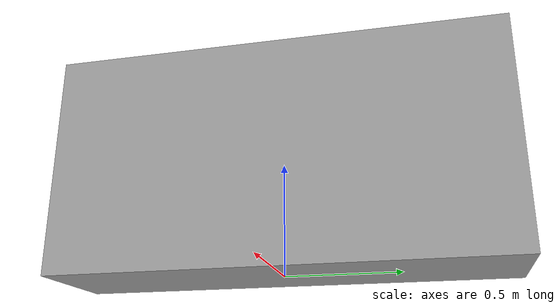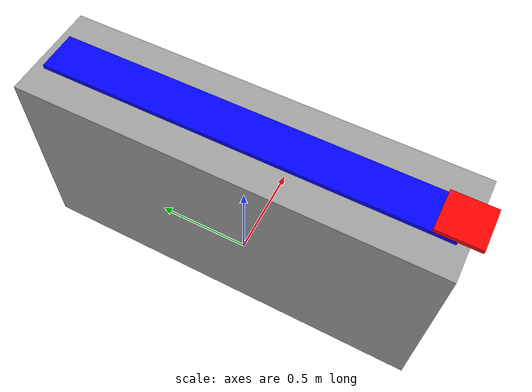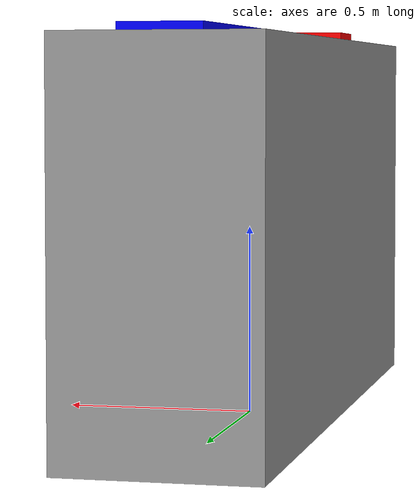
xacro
<?xml version="1.0"?>
<robot xmlns:xacro="http://ros.org/wiki/xacro" name="table_rail_montage">

  <!-- Table -->
  <link name="table">
    <visual>
      <origin xyz="0 0 0.5"/>
      <geometry><box size="0.5 2 1"/></geometry>
      <material name="grey"><color rgba="0.6 0.6 0.6 1.0"/></material>
    </visual>
    <collision>
      <origin xyz="0 0 0.5"/>
      <geometry><box size="0.5 2 1"/></geometry>
    </collision>
  </link>

  <!-- Rail sur la table-->
  <link name="rail">
    <visual>
      <origin xyz="0 0 1.01"/>
      <geometry><box size="0.20 1.9 0.02"/></geometry>
      <material name="blue"><color rgba="0 0 1 1.0"/></material>
    </visual>
    <collision>
      <origin xyz="0 0 1.01"/>
      <geometry><box size="0.20 1.9 0.02"/></geometry>
    </collision>
  </link>

  <joint name="table_to_rail" type="fixed">
    <parent link="table"/>
    <child link="rail"/>
    <origin xyz="0 0 0"/>
  </joint>

  <!-- La pièce qui glisse ("montage") -->
  <link name="montage">
    <visual>
      <origin xyz="0.0 0 1.03"/>
      <geometry><box size="0.2 0.2 0.02"/></geometry>
      <material name="red"><color rgba="1 0 0 1.0"/></material>
    </visual>
    <collision>
      <origin xyz="0.0 0 1.03"/>
      <geometry><box size="0.2 0.2 0.02"/></geometry>
    </collision>
  </link>

  <joint name="rail_joint" type="prismatic">
    <origin xyz="0 -0.95 0" rpy="0 0 0"/>
    <parent link="rail"/>
    <child link="montage"/>
    <axis xyz="0 1 0"/>
    <limit lower="0" upper="1.9" effort="1000" velocity="0.5"/>
  </joint>

</robot>
